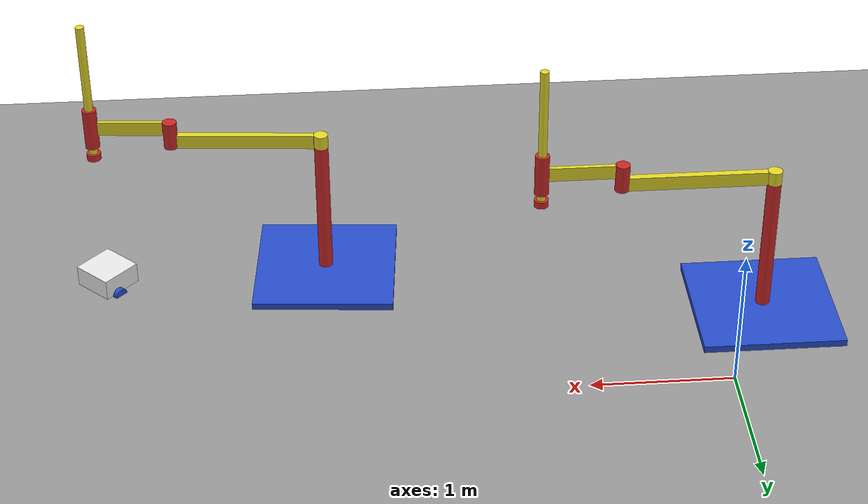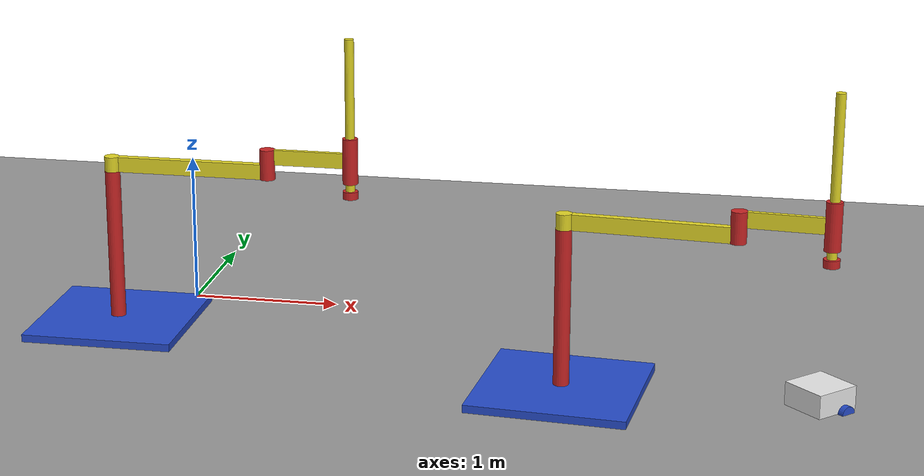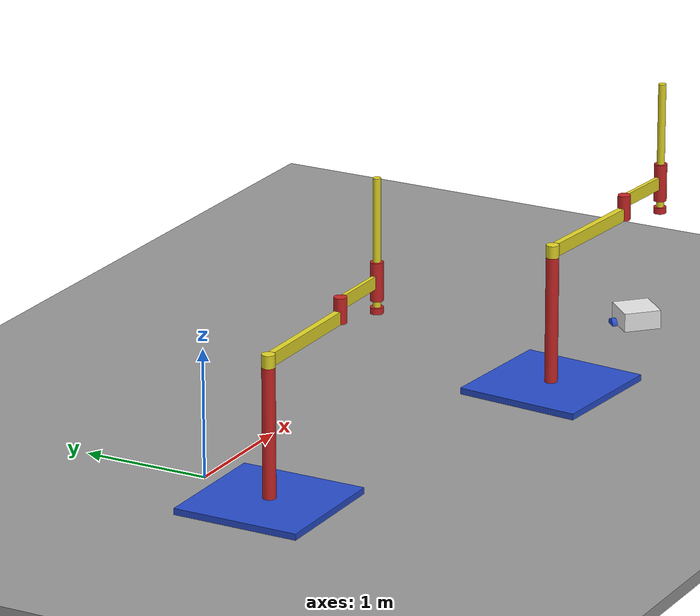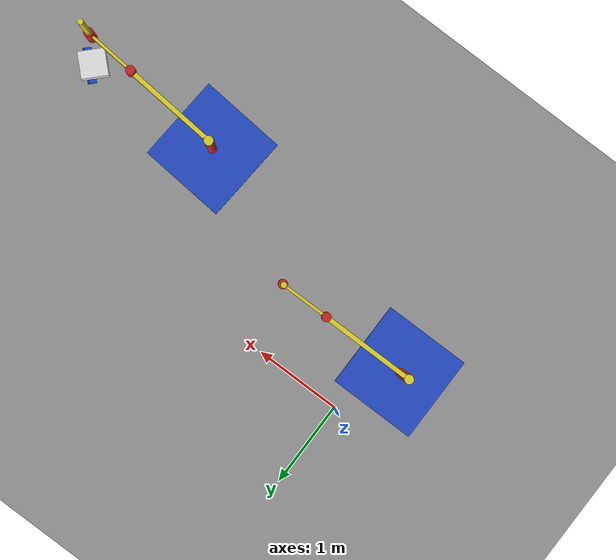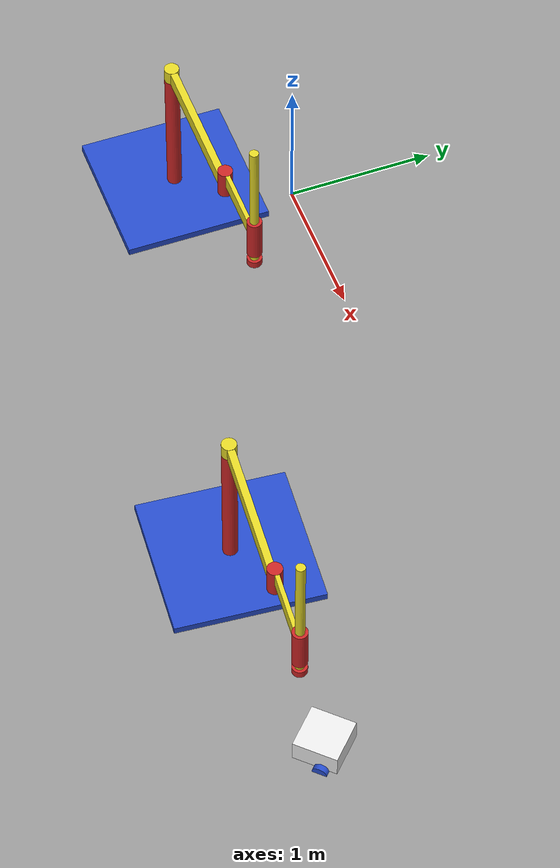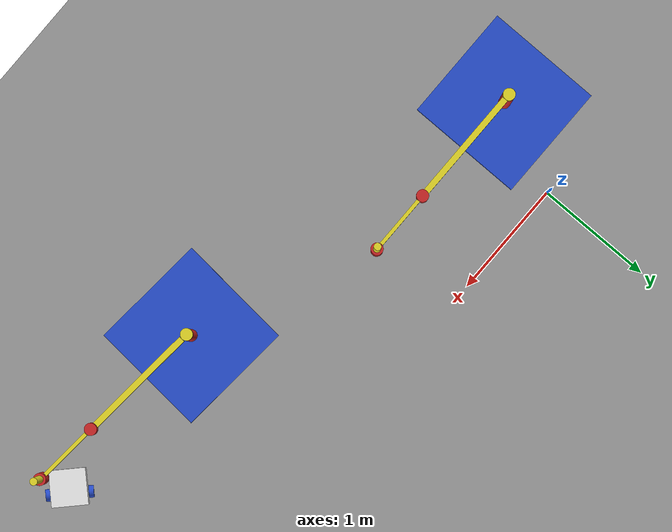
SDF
<sdf version="1.7">
 <world name="default">
  <light name="sun" type="directional">
   <pose>0 0 10 0 -0 0</pose>
   <diffuse>0.8 0.8 0.8 1</diffuse>
   <specular>0.2 0.2 0.2 1</specular>
   <attenuation>
    <range>1000</range>
    <constant>0.9</constant>
    <linear>0.01</linear>
    <quadratic>0.001</quadratic>
   </attenuation>
   <direction>-0.5 0.1 -0.9</direction>
   <spot><inner_angle>0</inner_angle><outer_angle>0</outer_angle><falloff>0</falloff></spot>
  </light>
  <model name="ground_plane">
   <static>1</static>
   <link name="link">
    <collision name="collision">
     <geometry><plane><normal>0 0 1</normal><size>100 100</size></plane></geometry>
     <surface><friction><ode><mu>100</mu><mu2>50</mu2></ode></friction></surface>
    </collision>
    <visual name="visual">
     <cast_shadows>0</cast_shadows>
     <geometry><plane><normal>0 0 1</normal><size>100 100</size></plane></geometry>
     <material>
      <script><uri>file://media/materials/scripts/gazebo.material</uri><name>Gazebo/Grey</name></script>
     </material>
    </visual>
   </link>
  </model>
  <gravity>0 0 -9.8</gravity>
  <magnetic_field>6e-06 2.3e-05 -4.2e-05</magnetic_field>
  <atmosphere type="adiabatic"/>
  <physics type="ode">
   <max_step_size>0.001</max_step_size>
   <real_time_factor>1</real_time_factor>
   <real_time_update_rate>1000</real_time_update_rate>
  </physics>
  <scene><ambient>0.4 0.4 0.4 1</ambient><background>0.7 0.7 0.7 1</background><shadows>1</shadows></scene>
  <spherical_coordinates>
   <surface_model>EARTH_WGS84</surface_model>
   <latitude_deg>0</latitude_deg>
   <longitude_deg>0</longitude_deg>
   <elevation>0</elevation>
   <heading_deg>0</heading_deg>
  </spherical_coordinates>
  <model name="my_bot">
   <link name="base_link">
    <inertial>
     <pose>0.065 0 0.0625 0 -0 0</pose>
     <mass>0.6</mass>
     <inertia>
      <ixx>0.00525625</ixx>
      <ixy>0</ixy>
      <ixz>0.0005625</ixz>
      <iyy>0.00593125</iyy>
      <iyz>0</iyz>
      <izz>0.008275</izz>
     </inertia>
    </inertial>
    <collision name="base_link_fixed_joint_lump__chassis_collision">
     <pose>0.05 0 0.075 0 -0 0</pose>
     <geometry><box><size>0.3 0.3 0.15</size></box></geometry>
    </collision>
    <collision name="base_link_fixed_joint_lump__caster_wheel_collision_1">
     <pose>0.14 0 0 0 -0 0</pose>
     <geometry><sphere><radius>0.05</radius></sphere></geometry>
     <surface><friction><ode><mu>0.001</mu><mu2>0.001</mu2></ode></friction></surface>
    </collision>
    <visual name="base_link_fixed_joint_lump__chassis_visual">
     <pose>0.05 0 0.075 0 -0 0</pose>
     <geometry><box><size>0.3 0.3 0.15</size></box></geometry>
     <material>
      <script><name>Gazebo/White</name><uri>file://media/materials/scripts/gazebo.material</uri></script>
     </material>
    </visual>
    <visual name="base_link_fixed_joint_lump__caster_wheel_visual_1">
     <pose>0.14 0 0 0 -0 0</pose>
     <geometry><sphere><radius>0.05</radius></sphere></geometry>
     <material>
      <script><name>Gazebo/Black</name><uri>file://media/materials/scripts/gazebo.material</uri></script>
     </material>
    </visual>
   </link>
   <joint name="left_wheel_joint" type="revolute">
    <pose relative_to="base_link">0 0.175 0 -1.5708 0 0</pose>
    <parent>base_link</parent>
    <child>left_wheel</child>
    <axis>
     <xyz>0 0 1</xyz>
     <limit><lower>-1e+16</lower><upper>1e+16</upper></limit>
     <dynamics><spring_reference>0</spring_reference><spring_stiffness>0</spring_stiffness></dynamics>
    </axis>
   </joint>
   <link name="left_wheel">
    <pose relative_to="left_wheel_joint">0 0 0 0 -0 0</pose>
    <inertial>
     <mass>0.1</mass>
     <inertia>
      <ixx>7.58333e-05</ixx>
      <ixy>0</ixy>
      <ixz>0</ixz>
      <iyy>7.58333e-05</iyy>
      <iyz>0</iyz>
      <izz>0.000125</izz>
     </inertia>
    </inertial>
    <collision name="left_wheel_collision">
     <geometry><cylinder><length>0.04</length><radius>0.05</radius></cylinder></geometry>
    </collision>
    <visual name="left_wheel_visual">
     <geometry><cylinder><length>0.04</length><radius>0.05</radius></cylinder></geometry>
     <material>
      <script><name>Gazebo/Blue</name><uri>file://media/materials/scripts/gazebo.material</uri></script>
     </material>
    </visual>
   </link>
   <joint name="right_wheel_joint" type="revolute">
    <pose relative_to="base_link">0 -0.175 0 1.5708 -0 0</pose>
    <parent>base_link</parent>
    <child>right_wheel</child>
    <axis>
     <xyz>0 0 -1</xyz>
     <limit><lower>-1e+16</lower><upper>1e+16</upper></limit>
     <dynamics><spring_reference>0</spring_reference><spring_stiffness>0</spring_stiffness></dynamics>
    </axis>
   </joint>
   <link name="right_wheel">
    <pose relative_to="right_wheel_joint">0 0 0 0 -0 0</pose>
    <inertial>
     <mass>0.1</mass>
     <inertia>
      <ixx>7.58333e-05</ixx>
      <ixy>0</ixy>
      <ixz>0</ixz>
      <iyy>7.58333e-05</iyy>
      <iyz>0</iyz>
      <izz>0.000125</izz>
     </inertia>
    </inertial>
    <collision name="right_wheel_collision">
     <geometry><cylinder><length>0.04</length><radius>0.05</radius></cylinder></geometry>
    </collision>
    <visual name="right_wheel_visual">
     <geometry><cylinder><length>0.04</length><radius>0.05</radius></cylinder></geometry>
     <material>
      <script><name>Gazebo/Blue</name><uri>file://media/materials/scripts/gazebo.material</uri></script>
     </material>
    </visual>
   </link>
   <static>0</static>
   <plugin name="diff_drive" filename="libgazebo_ros_diff_drive.so">
    <left_joint>left_wheel_joint</left_joint>
    <right_joint>right_wheel_joint</right_joint>
    <wheel_separation>0.35</wheel_separation>
    <wheel_diameter>0.1</wheel_diameter>
    <max_wheel_torque>200</max_wheel_torque>
    <max_wheel_acceleration>10.0</max_wheel_acceleration>
    <odometry_frame>odom</odometry_frame>
    <robot_base_frame>base_link</robot_base_frame>
    <publish_odom>1</publish_odom>
    <publish_odom_tf>1</publish_odom_tf>
    <publish_wheel_tf>1</publish_wheel_tf>
   </plugin>
   <pose>4.35448 -1.3591 0.05 -2e-06 2e-06 -2.34007</pose>
  </model>
  <model name="simple_arm">
   <link name="arm_base">
    <inertial>
     <pose>0 0 0.00099 0 -0 0</pose>
     <inertia><ixx>1.11</ixx><ixy>0</ixy><ixz>0</ixz><iyy>100.11</iyy><iyz>0</iyz><izz>1.01</izz></inertia>
     <mass>101</mass>
    </inertial>
    <collision name="arm_base_geom">
     <pose>0 0 0.05 0 -0 0</pose>
     <geometry><box><size>1 1 0.1</size></box></geometry>
    </collision>
    <visual name="arm_base_geom_visual">
     <pose>0 0 0.05 0 -0 0</pose>
     <geometry><box><size>1 1 0.1</size></box></geometry>
     <material>
      <script><uri>file://media/materials/scripts/gazebo.material</uri><name>Gazebo/Blue</name></script>
     </material>
    </visual>
    <collision name="arm_base_geom_arm_trunk">
     <pose>0 0 0.6 0 -0 0</pose>
     <geometry><cylinder><radius>0.05</radius><length>1</length></cylinder></geometry>
    </collision>
    <visual name="arm_base_geom_arm_trunk_visual">
     <pose>0 0 0.6 0 -0 0</pose>
     <geometry><cylinder><radius>0.05</radius><length>1</length></cylinder></geometry>
     <material>
      <script><uri>file://media/materials/scripts/gazebo.material</uri><name>Gazebo/Red</name></script>
     </material>
    </visual>
   </link>
   <link name="arm_shoulder_pan">
    <pose>0 0 1.1 0 -0 0</pose>
    <inertial>
     <pose>0.045455 0 0 0 -0 0</pose>
     <inertia><ixx>0.011</ixx><ixy>0</ixy><ixz>0</ixz><iyy>0.0225</iyy><iyz>0</iyz><izz>0.0135</izz></inertia>
     <mass>1.1</mass>
    </inertial>
    <collision name="arm_shoulder_pan_geom">
     <pose>0 0 0.05 0 -0 0</pose>
     <geometry><cylinder><radius>0.05</radius><length>0.1</length></cylinder></geometry>
    </collision>
    <visual name="arm_shoulder_pan_geom_visual">
     <pose>0 0 0.05 0 -0 0</pose>
     <geometry><cylinder><radius>0.05</radius><length>0.1</length></cylinder></geometry>
     <material>
      <script><uri>file://media/materials/scripts/gazebo.material</uri><name>Gazebo/Yellow</name></script>
     </material>
    </visual>
    <collision name="arm_shoulder_pan_geom_arm_shoulder">
     <pose>0.55 0 0.05 0 -0 0</pose>
     <geometry><box><size>1 0.05 0.1</size></box></geometry>
    </collision>
    <visual name="arm_shoulder_pan_geom_arm_shoulder_visual">
     <pose>0.55 0 0.05 0 -0 0</pose>
     <geometry><box><size>1 0.05 0.1</size></box></geometry>
     <material>
      <script><uri>file://media/materials/scripts/gazebo.material</uri><name>Gazebo/Yellow</name></script>
     </material>
    </visual>
   </link>
   <link name="arm_elbow_pan">
    <pose>1.05 0 1.1 0 -0 0</pose>
    <inertial>
     <pose>0.0875 0 0.083333 0 -0 0</pose>
     <inertia>
      <ixx>0.031</ixx>
      <ixy>0</ixy>
      <ixz>0.005</ixz>
      <iyy>0.07275</iyy>
      <iyz>0</iyz>
      <izz>0.04475</izz>
     </inertia>
     <mass>1.2</mass>
    </inertial>
    <collision name="arm_elbow_pan_geom">
     <pose>0 0 0.1 0 -0 0</pose>
     <geometry><cylinder><radius>0.05</radius><length>0.2</length></cylinder></geometry>
    </collision>
    <visual name="arm_elbow_pan_geom_visual">
     <pose>0 0 0.1 0 -0 0</pose>
     <geometry><cylinder><radius>0.05</radius><length>0.2</length></cylinder></geometry>
     <material>
      <script><uri>file://media/materials/scripts/gazebo.material</uri><name>Gazebo/Red</name></script>
     </material>
    </visual>
    <collision name="arm_elbow_pan_geom_arm_elbow">
     <pose>0.3 0 0.15 0 -0 0</pose>
     <geometry><box><size>0.5 0.03 0.1</size></box></geometry>
    </collision>
    <visual name="arm_elbow_pan_geom_arm_elbow_visual">
     <pose>0.3 0 0.15 0 -0 0</pose>
     <geometry><box><size>0.5 0.03 0.1</size></box></geometry>
     <material>
      <script><uri>file://media/materials/scripts/gazebo.material</uri><name>Gazebo/Yellow</name></script>
     </material>
    </visual>
    <collision name="arm_elbow_pan_geom_arm_wrist">
     <pose>0.55 0 0.15 0 -0 0</pose>
     <geometry><cylinder><radius>0.05</radius><length>0.3</length></cylinder></geometry>
    </collision>
    <visual name="arm_elbow_pan_geom_arm_wrist_visual">
     <pose>0.55 0 0.15 0 -0 0</pose>
     <geometry><cylinder><radius>0.05</radius><length>0.3</length></cylinder></geometry>
     <material>
      <script><uri>file://media/materials/scripts/gazebo.material</uri><name>Gazebo/Red</name></script>
     </material>
    </visual>
   </link>
   <link name="arm_wrist_lift">
    <pose>1.6 0 1.05 0 -0 0</pose>
    <inertial>
     <inertia><ixx>0.01</ixx><ixy>0</ixy><ixz>0</ixz><iyy>0.01</iyy><iyz>0</iyz><izz>0.001</izz></inertia>
     <mass>0.1</mass>
    </inertial>
    <collision name="arm_wrist_lift_geom">
     <pose>0 0 0.5 0 -0 0</pose>
     <geometry><cylinder><radius>0.03</radius><length>1</length></cylinder></geometry>
    </collision>
    <visual name="arm_wrist_lift_geom_visual">
     <pose>0 0 0.5 0 -0 0</pose>
     <geometry><cylinder><radius>0.03</radius><length>1</length></cylinder></geometry>
     <material>
      <script><uri>file://media/materials/scripts/gazebo.material</uri><name>Gazebo/Yellow</name></script>
     </material>
    </visual>
   </link>
   <link name="arm_wrist_roll">
    <pose>1.6 0 1 0 -0 0</pose>
    <inertial>
     <inertia><ixx>0.01</ixx><ixy>0</ixy><ixz>0</ixz><iyy>0.01</iyy><iyz>0</iyz><izz>0.001</izz></inertia>
     <mass>0.1</mass>
    </inertial>
    <collision name="arm_wrist_roll_geom">
     <pose>0 0 0.025 0 -0 0</pose>
     <geometry><cylinder><radius>0.05</radius><length>0.05</length></cylinder></geometry>
    </collision>
    <visual name="arm_wrist_roll_geom_visual">
     <pose>0 0 0.025 0 -0 0</pose>
     <geometry><cylinder><radius>0.05</radius><length>0.05</length></cylinder></geometry>
     <material>
      <script><uri>file://media/materials/scripts/gazebo.material</uri><name>Gazebo/Red</name></script>
     </material>
    </visual>
   </link>
   <joint name="arm_shoulder_pan_joint" type="revolute">
    <parent>arm_base</parent>
    <child>arm_shoulder_pan</child>
    <axis>
     <dynamics>
      <damping>1</damping>
      <friction>0</friction>
      <spring_reference>0</spring_reference>
      <spring_stiffness>0</spring_stiffness>
     </dynamics>
     <xyz expressed_in="__model__">0 0 1</xyz>
     <limit><lower>-1e+16</lower><upper>1e+16</upper></limit>
    </axis>
   </joint>
   <joint name="arm_elbow_pan_joint" type="revolute">
    <parent>arm_shoulder_pan</parent>
    <child>arm_elbow_pan</child>
    <axis>
     <dynamics>
      <damping>1</damping>
      <friction>0</friction>
      <spring_reference>0</spring_reference>
      <spring_stiffness>0</spring_stiffness>
     </dynamics>
     <xyz expressed_in="__model__">0 0 1</xyz>
     <limit><lower>-1e+16</lower><upper>1e+16</upper></limit>
    </axis>
   </joint>
   <joint name="arm_wrist_lift_joint" type="prismatic">
    <parent>arm_elbow_pan</parent>
    <child>arm_wrist_lift</child>
    <axis>
     <dynamics>
      <damping>1</damping>
      <friction>0</friction>
      <spring_reference>0</spring_reference>
      <spring_stiffness>0</spring_stiffness>
     </dynamics>
     <limit><lower>-0.8</lower><upper>0.1</upper></limit>
     <xyz expressed_in="__model__">0 0 1</xyz>
    </axis>
   </joint>
   <joint name="arm_wrist_roll_joint" type="revolute">
    <parent>arm_wrist_lift</parent>
    <child>arm_wrist_roll</child>
    <axis>
     <dynamics>
      <damping>1</damping>
      <friction>0</friction>
      <spring_reference>0</spring_reference>
      <spring_stiffness>0</spring_stiffness>
     </dynamics>
     <limit><lower>-2.99999</lower><upper>2.99999</upper></limit>
     <xyz expressed_in="__model__">0 0 1</xyz>
    </axis>
   </joint>
   <pose>-0.325827 -0.734092 -0 0 0 -0.000593</pose>
  </model>
  <model name="ground_plane_0">
   <static>1</static>
   <link name="link">
    <collision name="collision">
     <geometry><plane><normal>0 0 1</normal><size>100 100</size></plane></geometry>
     <surface><friction><ode><mu>100</mu><mu2>50</mu2></ode></friction></surface>
    </collision>
    <visual name="visual">
     <cast_shadows>0</cast_shadows>
     <geometry><plane><normal>0 0 1</normal><size>100 100</size></plane></geometry>
     <material>
      <script><uri>file://media/materials/scripts/gazebo.material</uri><name>Gazebo/Grey</name></script>
     </material>
    </visual>
   </link>
   <pose>-3.08904 -1.34731 0 0 -0 0</pose>
  </model>
  <light name="sun" type="directional">
   <pose>-8.14246 2.34347 10 0 -0 0</pose>
   <diffuse>0.8 0.8 0.8 1</diffuse>
   <specular>0.2 0.2 0.2 1</specular>
   <attenuation>
    <range>1000</range>
    <constant>0.9</constant>
    <linear>0.01</linear>
    <quadratic>0.001</quadratic>
   </attenuation>
   <direction>-0.5 0.1 -0.9</direction>
  </light>
  <model name="simple_arm_0">
   <link name="arm_base">
    <inertial>
     <pose>0 0 0.00099 0 -0 0</pose>
     <inertia><ixx>1.11</ixx><ixy>0</ixy><ixz>0</ixz><iyy>100.11</iyy><iyz>0</iyz><izz>1.01</izz></inertia>
     <mass>101</mass>
    </inertial>
    <collision name="arm_base_geom">
     <pose>0 0 0.05 0 -0 0</pose>
     <geometry><box><size>1 1 0.1</size></box></geometry>
    </collision>
    <visual name="arm_base_geom_visual">
     <pose>0 0 0.05 0 -0 0</pose>
     <geometry><box><size>1 1 0.1</size></box></geometry>
     <material>
      <script><uri>file://media/materials/scripts/gazebo.material</uri><name>Gazebo/Blue</name></script>
     </material>
    </visual>
    <collision name="arm_base_geom_arm_trunk">
     <pose>0 0 0.6 0 -0 0</pose>
     <geometry><cylinder><radius>0.05</radius><length>1</length></cylinder></geometry>
    </collision>
    <visual name="arm_base_geom_arm_trunk_visual">
     <pose>0 0 0.6 0 -0 0</pose>
     <geometry><cylinder><radius>0.05</radius><length>1</length></cylinder></geometry>
     <material>
      <script><uri>file://media/materials/scripts/gazebo.material</uri><name>Gazebo/Red</name></script>
     </material>
    </visual>
   </link>
   <link name="arm_shoulder_pan">
    <pose>0 0 1.1 0 -0 0</pose>
    <inertial>
     <pose>0.045455 0 0 0 -0 0</pose>
     <inertia><ixx>0.011</ixx><ixy>0</ixy><ixz>0</ixz><iyy>0.0225</iyy><iyz>0</iyz><izz>0.0135</izz></inertia>
     <mass>1.1</mass>
    </inertial>
    <collision name="arm_shoulder_pan_geom">
     <pose>0 0 0.05 0 -0 0</pose>
     <geometry><cylinder><radius>0.05</radius><length>0.1</length></cylinder></geometry>
    </collision>
    <visual name="arm_shoulder_pan_geom_visual">
     <pose>0 0 0.05 0 -0 0</pose>
     <geometry><cylinder><radius>0.05</radius><length>0.1</length></cylinder></geometry>
     <material>
      <script><uri>file://media/materials/scripts/gazebo.material</uri><name>Gazebo/Yellow</name></script>
     </material>
    </visual>
    <collision name="arm_shoulder_pan_geom_arm_shoulder">
     <pose>0.55 0 0.05 0 -0 0</pose>
     <geometry><box><size>1 0.05 0.1</size></box></geometry>
    </collision>
    <visual name="arm_shoulder_pan_geom_arm_shoulder_visual">
     <pose>0.55 0 0.05 0 -0 0</pose>
     <geometry><box><size>1 0.05 0.1</size></box></geometry>
     <material>
      <script><uri>file://media/materials/scripts/gazebo.material</uri><name>Gazebo/Yellow</name></script>
     </material>
    </visual>
   </link>
   <link name="arm_elbow_pan">
    <pose>1.05 0 1.1 0 -0 0</pose>
    <inertial>
     <pose>0.0875 0 0.083333 0 -0 0</pose>
     <inertia>
      <ixx>0.031</ixx>
      <ixy>0</ixy>
      <ixz>0.005</ixz>
      <iyy>0.07275</iyy>
      <iyz>0</iyz>
      <izz>0.04475</izz>
     </inertia>
     <mass>1.2</mass>
    </inertial>
    <collision name="arm_elbow_pan_geom">
     <pose>0 0 0.1 0 -0 0</pose>
     <geometry><cylinder><radius>0.05</radius><length>0.2</length></cylinder></geometry>
    </collision>
    <visual name="arm_elbow_pan_geom_visual">
     <pose>0 0 0.1 0 -0 0</pose>
     <geometry><cylinder><radius>0.05</radius><length>0.2</length></cylinder></geometry>
     <material>
      <script><uri>file://media/materials/scripts/gazebo.material</uri><name>Gazebo/Red</name></script>
     </material>
    </visual>
    <collision name="arm_elbow_pan_geom_arm_elbow">
     <pose>0.3 0 0.15 0 -0 0</pose>
     <geometry><box><size>0.5 0.03 0.1</size></box></geometry>
    </collision>
    <visual name="arm_elbow_pan_geom_arm_elbow_visual">
     <pose>0.3 0 0.15 0 -0 0</pose>
     <geometry><box><size>0.5 0.03 0.1</size></box></geometry>
     <material>
      <script><uri>file://media/materials/scripts/gazebo.material</uri><name>Gazebo/Yellow</name></script>
     </material>
    </visual>
    <collision name="arm_elbow_pan_geom_arm_wrist">
     <pose>0.55 0 0.15 0 -0 0</pose>
     <geometry><cylinder><radius>0.05</radius><length>0.3</length></cylinder></geometry>
    </collision>
    <visual name="arm_elbow_pan_geom_arm_wrist_visual">
     <pose>0.55 0 0.15 0 -0 0</pose>
     <geometry><cylinder><radius>0.05</radius><length>0.3</length></cylinder></geometry>
     <material>
      <script><uri>file://media/materials/scripts/gazebo.material</uri><name>Gazebo/Red</name></script>
     </material>
    </visual>
   </link>
   <link name="arm_wrist_lift">
    <pose>1.6 0 1.05 0 -0 0</pose>
    <inertial>
     <inertia><ixx>0.01</ixx><ixy>0</ixy><ixz>0</ixz><iyy>0.01</iyy><iyz>0</iyz><izz>0.001</izz></inertia>
     <mass>0.1</mass>
    </inertial>
    <collision name="arm_wrist_lift_geom">
     <pose>0 0 0.5 0 -0 0</pose>
     <geometry><cylinder><radius>0.03</radius><length>1</length></cylinder></geometry>
    </collision>
    <visual name="arm_wrist_lift_geom_visual">
     <pose>0 0 0.5 0 -0 0</pose>
     <geometry><cylinder><radius>0.03</radius><length>1</length></cylinder></geometry>
     <material>
      <script><uri>file://media/materials/scripts/gazebo.material</uri><name>Gazebo/Yellow</name></script>
     </material>
    </visual>
   </link>
   <link name="arm_wrist_roll">
    <pose>1.6 0 1 0 -0 0</pose>
    <inertial>
     <inertia><ixx>0.01</ixx><ixy>0</ixy><ixz>0</ixz><iyy>0.01</iyy><iyz>0</iyz><izz>0.001</izz></inertia>
     <mass>0.1</mass>
    </inertial>
    <collision name="arm_wrist_roll_geom">
     <pose>0 0 0.025 0 -0 0</pose>
     <geometry><cylinder><radius>0.05</radius><length>0.05</length></cylinder></geometry>
    </collision>
    <visual name="arm_wrist_roll_geom_visual">
     <pose>0 0 0.025 0 -0 0</pose>
     <geometry><cylinder><radius>0.05</radius><length>0.05</length></cylinder></geometry>
     <material>
      <script><uri>file://media/materials/scripts/gazebo.material</uri><name>Gazebo/Red</name></script>
     </material>
    </visual>
   </link>
   <joint name="arm_shoulder_pan_joint" type="revolute">
    <parent>arm_base</parent>
    <child>arm_shoulder_pan</child>
    <axis>
     <dynamics>
      <damping>1</damping>
      <friction>0</friction>
      <spring_reference>0</spring_reference>
      <spring_stiffness>0</spring_stiffness>
     </dynamics>
     <xyz expressed_in="__model__">0 0 1</xyz>
     <limit><lower>-1e+16</lower><upper>1e+16</upper></limit>
    </axis>
   </joint>
   <joint name="arm_elbow_pan_joint" type="revolute">
    <parent>arm_shoulder_pan</parent>
    <child>arm_elbow_pan</child>
    <axis>
     <dynamics>
      <damping>1</damping>
      <friction>0</friction>
      <spring_reference>0</spring_reference>
      <spring_stiffness>0</spring_stiffness>
     </dynamics>
     <xyz expressed_in="__model__">0 0 1</xyz>
     <limit><lower>-1e+16</lower><upper>1e+16</upper></limit>
    </axis>
   </joint>
   <joint name="arm_wrist_lift_joint" type="prismatic">
    <parent>arm_elbow_pan</parent>
    <child>arm_wrist_lift</child>
    <axis>
     <dynamics>
      <damping>1</damping>
      <friction>0</friction>
      <spring_reference>0</spring_reference>
      <spring_stiffness>0</spring_stiffness>
     </dynamics>
     <limit><lower>-0.8</lower><upper>0.1</upper></limit>
     <xyz expressed_in="__model__">0 0 1</xyz>
    </axis>
   </joint>
   <joint name="arm_wrist_roll_joint" type="revolute">
    <parent>arm_wrist_lift</parent>
    <child>arm_wrist_roll</child>
    <axis>
     <dynamics>
      <damping>1</damping>
      <friction>0</friction>
      <spring_reference>0</spring_reference>
      <spring_stiffness>0</spring_stiffness>
     </dynamics>
     <limit><lower>-2.99999</lower><upper>2.99999</upper></limit>
     <xyz expressed_in="__model__">0 0 1</xyz>
    </axis>
   </joint>
   <pose>2.74724 -1.43947 -5.4e-05 0.00011 -1e-06 -0.082038</pose>
  </model>
 </world>
</sdf>
